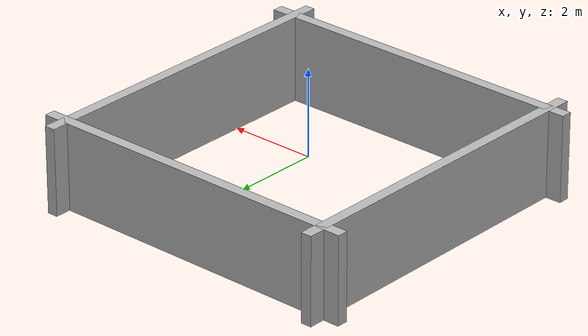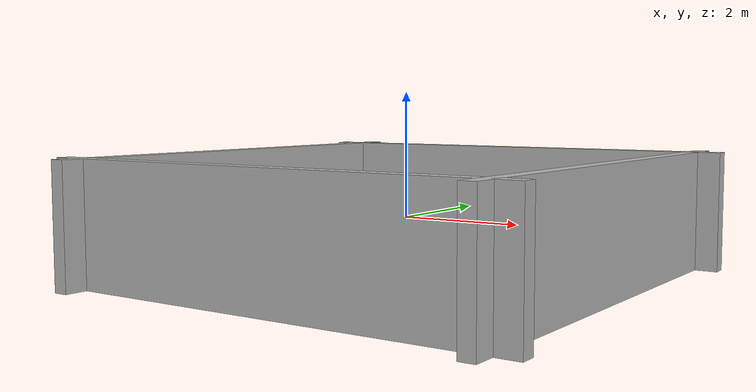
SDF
<?xml version='1.0'?>
<sdf version='13'>
  <model name="test_room">
  <static>true</static>
            <link name='boundary_one'>
            <pose>0 -3.5 0 0 0 0</pose>

            <collision name='collision'>
              <geometry>
                <box>
                  <size>8 .25 2.0</size>
                </box>
              </geometry>
            </collision>

            <visual name='visual'>
              <geometry>
                <box>
                  <size>8 .25 2.0</size>
                </box>
              </geometry>
                <material>
                  <script>
                    <uri>model://brick_box_3x1x3/materials/scripts</uri>
                    <uri>model://brick_box_3x1x3/materials/textures</uri>
                    <name>BrickBox/Diffuse</name>
                  </script>
                </material>
            </visual>

          </link>
            <link name='boundary_two'>
            <pose>0 3.5 0 0 0 0</pose>

            <collision name='collision'>
              <geometry>
                <box>
                  <size>8 .25 2.0</size>
                </box>
	      </geometry>
            </collision>

            <visual name='visual'>
              <geometry>
                <box>
                  <size>8 .25 2.0</size>
                </box>
              </geometry>
                <material>
                  <script>
                    <uri>model://brick_box_3x1x3/materials/scripts</uri>
            <uri>model://brick_box_3x1x3/materials/textures</uri>
                    <name>BrickBox/Diffuse</name>
                  </script>
                </material>
            </visual>

          </link>
            <link name='boundary_three'>
            <pose>3.5 0 0 0 0 1.57</pose>

            <collision name='collision'>
              <geometry>
                <box>
                  <size>8 .25 2.0</size>
                </box>
              </geometry>
            </collision>

            <visual name='visual'>
              <geometry>
                <box>
                  <size>8 .25 2.0</size>
                </box>
              </geometry>
                <material>
                  <script>
                    <uri>model://brick_box_3x1x3/materials/scripts</uri>
                    <uri>model://brick_box_3x1x3/materials/textures</uri>
                    <name>BrickBox/Diffuse</name>
                  </script>
                </material>
            </visual>

          </link>
            <link name='boundary_four'>
            <pose>-3.5 0 0 0 0 1.57</pose>

            <collision name='collision'>
              <geometry>
                <box>
                  <size>8 .25 2.0</size>
                </box>
              </geometry>
            </collision>

            <visual name='visual'>
              <geometry>
                <box>
                  <size>8 .25 2.0</size>
                </box>
              </geometry>
                <material>
                  <script>
                    <uri>model://brick_box_3x1x3/materials/scripts</uri>
            <uri>model://brick_box_3x1x3/materials/textures</uri>
                    <name>BrickBox/Diffuse</name>
                  </script>
                </material>
            </visual>
          </link>
  </model>
</sdf>
